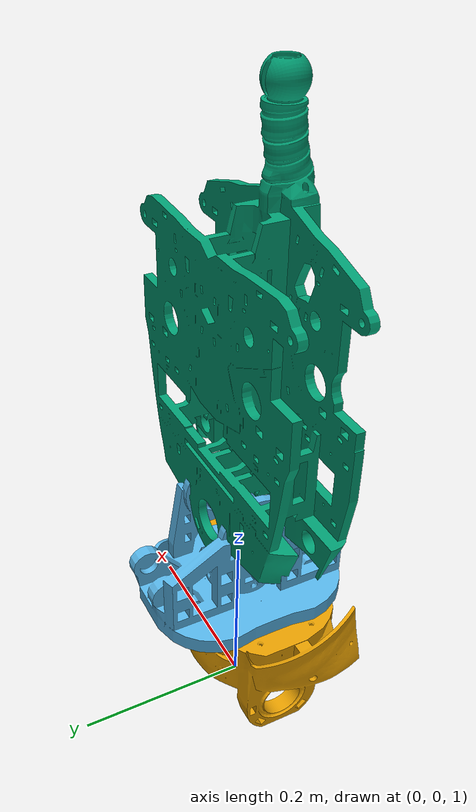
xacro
<?xml version="1.0"?>
<robot name="inmoov_torso" xmlns:xacro="http://ros.org/wiki/xacro">
    <link name="mid_stomach_link">
        <visual>
            <geometry>
                <mesh filename="package://inmoov_description/meshes/mid_stomach.stl" scale="0.001 0.001 0.001"/>
            </geometry>
            <origin rpy="0.0 0.0 0.0" xyz="0.0 0.0 1.152"/>
            <xacro:frame_color/>
        </visual>
        <xacro:mid_stomach_inertial/>
    </link>
    <link name="top_stomach_link">
        <visual>
            <geometry>
                <mesh filename="package://inmoov_description/meshes/top_stomach.stl" scale="0.001 0.001 0.001"/>
            </geometry>
            <origin rpy="0.0 0.0 0.0" xyz="0.0 0.0 0.0"/>
            <xacro:frame_color/>
        </visual>
        <xacro:top_stomach_inertial/>
    </link>
    <link name="torso_link">
        <visual>
            <geometry>
                <mesh filename="package://inmoov_description/meshes/torso.stl" scale="0.001 0.001 0.001"/>
            </geometry>
            <origin rpy="0.0 0.0 0.0" xyz="0.0 0.0 0.0"/>
            <xacro:frame_color/>
        </visual>
        <xacro:torso_inertial/>
    </link>

    <joint name="waist_pan_joint" type="revolute">
        <axis xyz="0.0 0.0 1.0"/>
        <limit effort="1000.0" lower="-1.0" upper="1.0" velocity="1.0"/>
        <parent link="mid_stomach_link"/>
        <child link="top_stomach_link"/>
        <origin rpy="0.0 0.0 0.0" xyz="0.0 0.0 1.152"/>
    </joint>
    <joint name="waist_roll_joint" type="revolute">
        <axis xyz="1.0 0.0 0.0"/>
        <limit effort="1000.0" lower="-0.25" upper="0.25" velocity="1.0"/>
        <parent link="top_stomach_link"/>
        <child link="torso_link"/>
        <origin rpy="0.0 0.0 0.0" xyz="0.0 0.0 0.11"/>
    </joint>

    <transmission name="waist_pan_transmission">
        <type>transmission_interface/SimpleTransmission</type>
        <joint name="waist_pan_joint">
            <hardwareInterface>hardware_interface/PositionJointInterface</hardwareInterface>
        </joint>
        <actuator name="waist_pan_motor">
            <hardwareInterface>hardware_interface/PositionJointInterface</hardwareInterface>
            <mechanicalReduction>1</mechanicalReduction>
        </actuator>
    </transmission>
    <transmission name="waist_roll_transmission">
        <type>transmission_interface/SimpleTransmission</type>
        <joint name="waist_roll_joint">
            <hardwareInterface>hardware_interface/PositionJointInterface</hardwareInterface>
        </joint>
        <actuator name="waist_roll_motor">
            <hardwareInterface>hardware_interface/PositionJointInterface</hardwareInterface>
            <mechanicalReduction>1</mechanicalReduction>
        </actuator>
    </transmission>

    <gazebo reference="mid_stomach_link">
        <xacro:g_frame_color/>
    </gazebo>
    <gazebo reference="top_stomach_link">
        <xacro:g_frame_color/>
    </gazebo>
    <gazebo reference="torso_link">
        <xacro:g_frame_color/>
    </gazebo>
</robot>
